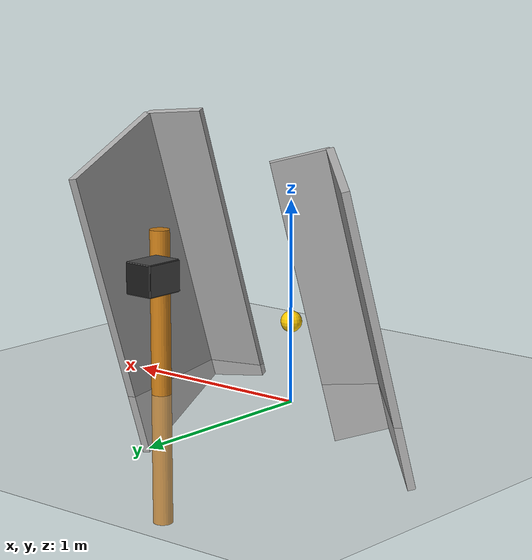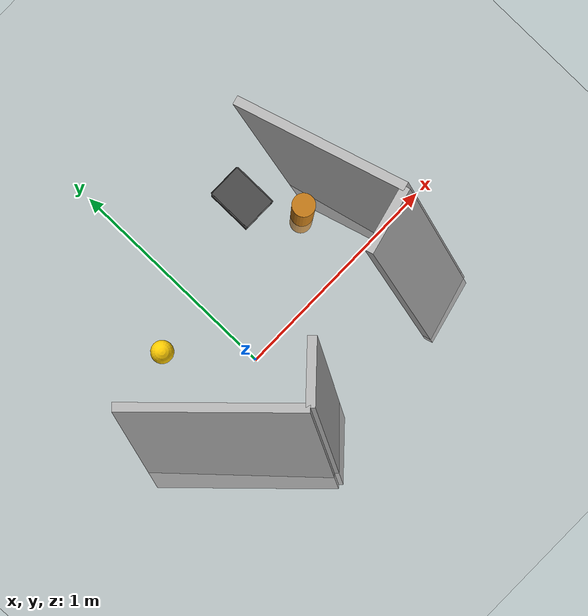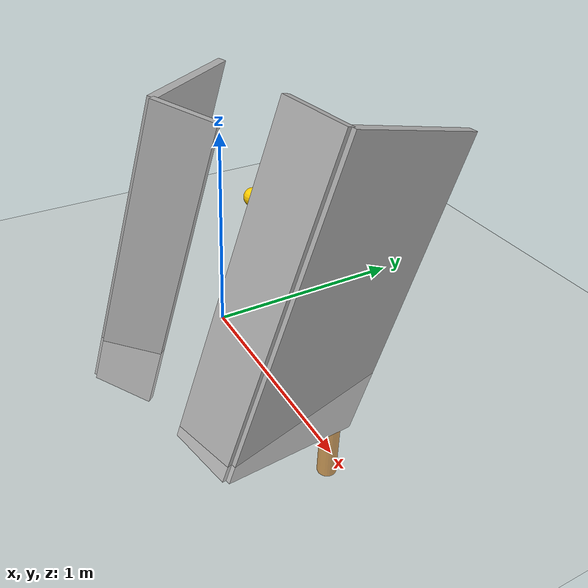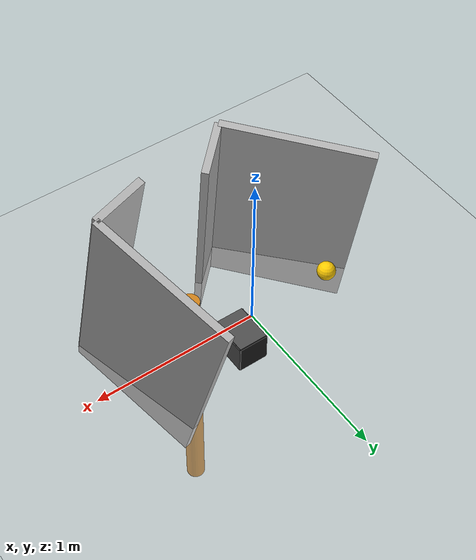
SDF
<?xml version="1.0" ?>
<sdf version="1.9">
  <world name="refuel_world">
    <physics name="4ms" type="ignored">
      <max_step_size>0.004</max_step_size>
      <real_time_factor>1.0</real_time_factor>
    </physics>

    <plugin filename="gz-sim-physics-system" name="gz::sim::systems::Physics"/>
    <plugin filename="gz-sim-user-commands-system" name="gz::sim::systems::UserCommands"/>
    <plugin filename="gz-sim-scene-broadcaster-system" name="gz::sim::systems::SceneBroadcaster"/>

    <light type="directional" name="sun">
      <cast_shadows>true</cast_shadows>
      <pose>0 0 10 0 0 0</pose>
      <diffuse>0.8 0.8 0.8 1</diffuse>
      <specular>0.2 0.2 0.2 1</specular>
      <direction>-0.5 0.1 -0.9</direction>
    </light>

    <model name="ground_plane">
      <static>true</static>
      <link name="link">
        <collision name="collision">
          <geometry><plane><normal>0 0 1</normal></plane></geometry>
        </collision>
        <visual name="visual">
          <geometry><plane><normal>0 0 1</normal><size>100 100</size></plane></geometry>
          <material><ambient>0.8 0.8 0.8 1</ambient><diffuse>0.8 0.8 0.8 1</diffuse></material>
        </visual>
      </link>
    </model>

    <!-- Refined Concave Socket (Industrial Grade) -->
    <model name="hollow_refuel_inlet">
      <static>true</static>
      <pose>0.43897855281829834 0.3999997079372406 0.64717501401901245 0 0 1.5708000357176291</pose>
      <link name="inlet_body">
        <visual name="back_visual">
          <pose>0.20000000000000001 0 0 0 0 0</pose>
          <geometry>
            <box>
              <size>0.01 0.14999999999999999 0.14999999999999999</size>
            </box>
          </geometry>
          <material>
            <ambient>0.100000001 0.100000001 0.100000001 1</ambient>
            <diffuse>0.100000001 0.100000001 0.100000001 1</diffuse>
          </material>
        </visual>
        <collision name="back_collision">
          <pose>0.20000000000000001 0 0 0 0 0</pose>
          <geometry>
            <box>
              <size>0.01 0.14999999999999999 0.14999999999999999</size>
            </box>
          </geometry>
          <surface>
            <friction>
              <ode/>
            </friction>
            <bounce/>
            <contact/>
          </surface>
        </collision>
        <visual name="top_wall">
          <pose>0.10000000000000001 0 0.074999999999999997 0 0 0</pose>
          <geometry>
            <box>
              <size>0.20000000000000001 0.14999999999999999 0.01</size>
            </box>
          </geometry>
          <material>
            <ambient>0.300000012 0.300000012 0.300000012 1</ambient>
            <diffuse>0.300000012 0.300000012 0.300000012 1</diffuse>
          </material>
        </visual>
        <collision name="top_wall_col">
          <pose>0.10000000000000001 0 0.074999999999999997 0 0 0</pose>
          <geometry>
            <box>
              <size>0.20000000000000001 0.14999999999999999 0.01</size>
            </box>
          </geometry>
          <surface>
            <friction>
              <ode/>
            </friction>
            <bounce/>
            <contact/>
          </surface>
        </collision>
        <visual name="bottom_wall">
          <pose>0.10000000000000001 0 -0.074999999999999997 0 0 0</pose>
          <geometry>
            <box>
              <size>0.20000000000000001 0.14999999999999999 0.01</size>
            </box>
          </geometry>
          <material>
            <ambient>0.300000012 0.300000012 0.300000012 1</ambient>
            <diffuse>0.300000012 0.300000012 0.300000012 1</diffuse>
          </material>
        </visual>
        <collision name="bottom_wall_col">
          <pose>0.10000000000000001 0 -0.074999999999999997 0 0 0</pose>
          <geometry>
            <box>
              <size>0.20000000000000001 0.14999999999999999 0.01</size>
            </box>
          </geometry>
          <surface>
            <friction>
              <ode/>
            </friction>
            <bounce/>
            <contact/>
          </surface>
        </collision>
        <visual name="left_wall">
          <pose>0.10000000000000001 0.074999999999999997 0 0 0 0</pose>
          <geometry>
            <box>
              <size>0.20000000000000001 0.01 0.14999999999999999</size>
            </box>
          </geometry>
          <material>
            <ambient>0.300000012 0.300000012 0.300000012 1</ambient>
            <diffuse>0.300000012 0.300000012 0.300000012 1</diffuse>
          </material>
        </visual>
        <collision name="left_wall_col">
          <pose>0.10000000000000001 0.074999999999999997 0 0 0 0</pose>
          <geometry>
            <box>
              <size>0.20000000000000001 0.01 0.14999999999999999</size>
            </box>
          </geometry>
          <surface>
            <friction>
              <ode/>
            </friction>
            <bounce/>
            <contact/>
          </surface>
        </collision>
        <visual name="right_wall">
          <pose>0.10000000000000001 -0.074999999999999997 0 0 0 0</pose>
          <geometry>
            <box>
              <size>0.20000000000000001 0.01 0.14999999999999999</size>
            </box>
          </geometry>
          <material>
            <ambient>0.300000012 0.300000012 0.300000012 1</ambient>
            <diffuse>0.300000012 0.300000012 0.300000012 1</diffuse>
          </material>
        </visual>
        <collision name="right_wall_col">
          <pose>0.10000000000000001 -0.074999999999999997 0 0 0 0</pose>
          <geometry>
            <box>
              <size>0.20000000000000001 0.01 0.14999999999999999</size>
            </box>
          </geometry>
          <surface>
            <friction>
              <ode/>
            </friction>
            <bounce/>
            <contact/>
          </surface>
        </collision>
        <pose>0 0 0 0 0 0</pose>
        <inertial>
          <pose>0 0 0 0 0 0</pose>
          <mass>1</mass>
          <inertia>
            <ixx>1</ixx>
            <ixy>0</ixy>
            <ixz>0</ixz>
            <iyy>1</iyy>
            <iyz>0</iyz>
            <izz>1</izz>
          </inertia>
        </inertial>
        <enable_wind>false</enable_wind>
      </link>
      <self_collide>false</self_collide>
    </model>

    <!-- L-Shaped Wall (Static) — partial enclosure around workspace -->
    <!-- Layout (top-down, Y-up, X-right):                          -->
    <!--   .        kuka (0,0)                                       -->
    <!--   .  . . . . .              x (inlet)                       -->
    <!--                  c (cylinder, moving)                        -->

    <!-- Tilted L-Shaped Wall (Static) — unified model with yaw      -->
    <model name="l_wall">
      <static>true</static>
      <pose>0.88537293672561646 -0.1840226948261261 0.63134819269180298 3.0408800087997232 -0.28413900133990611 -1.2926500652410564</pose>
      <link name="wall_links">
        <gravity>false</gravity>
        <visual name="v_vis">
          <pose>-0.40000000000000002 0 0 0 0 0</pose>
          <geometry>
            <box>
              <size>0.80000000000000004 0.040000000000000001 1.5</size>
            </box>
          </geometry>
          <material>
            <ambient>0.600000024 0.600000024 0.600000024 1</ambient>
            <diffuse>0.699999988 0.699999988 0.699999988 1</diffuse>
          </material>
        </visual>
        <collision name="v_col">
          <pose>-0.40000000000000002 0 0 0 0 0</pose>
          <geometry>
            <box>
              <size>0.80000000000000004 0.040000000000000001 1.5</size>
            </box>
          </geometry>
          <surface>
            <friction>
              <ode/>
            </friction>
            <bounce/>
            <contact/>
          </surface>
        </collision>
        <visual name="h_vis">
          <pose>0 0.14999999999999999 0 0 0 0</pose>
          <geometry>
            <box>
              <size>0.040000000000000001 0.29999999999999999 1.5</size>
            </box>
          </geometry>
          <material>
            <ambient>0.600000024 0.600000024 0.600000024 1</ambient>
            <diffuse>0.699999988 0.699999988 0.699999988 1</diffuse>
          </material>
        </visual>
        <collision name="h_col">
          <pose>0 0.14999999999999999 0 0 0 0</pose>
          <geometry>
            <box>
              <size>0.040000000000000001 0.29999999999999999 1.5</size>
            </box>
          </geometry>
          <surface>
            <friction>
              <ode/>
            </friction>
            <bounce/>
            <contact/>
          </surface>
        </collision>
        <pose>0 0 0 0 0 0</pose>
        <inertial>
          <pose>0 0 0 0 0 0</pose>
          <mass>1</mass>
          <inertia>
            <ixx>1</ixx>
            <ixy>0</ixy>
            <ixz>0</ixz>
            <iyy>1</iyy>
            <iyz>0</iyz>
            <izz>1</izz>
          </inertia>
        </inertial>
        <enable_wind>false</enable_wind>
      </link>
      <self_collide>false</self_collide>
    </model>

    <model name="l_wall_rear">
      <static>true</static>
      <pose>-0.0651078000664711 -0.4698689877986908 0.48663601279258728 -0.22969331719059286 -0.097120125560542087 -0.80745500892211752</pose>
      <link name="wall_links_rear">
        <gravity>false</gravity>
        <visual name="v_vis">
          <pose>-0.40000000000000002 0 0 0 0 0</pose>
          <geometry>
            <box>
              <size>0.80000000000000004 0.040000000000000001 1.5</size>
            </box>
          </geometry>
          <material>
            <ambient>0.600000024 0.600000024 0.600000024 1</ambient>
            <diffuse>0.699999988 0.699999988 0.699999988 1</diffuse>
          </material>
        </visual>
        <collision name="v_col">
          <pose>-0.40000000000000002 0 0 0 0 0</pose>
          <geometry>
            <box>
              <size>0.80000000000000004 0.040000000000000001 1.5</size>
            </box>
          </geometry>
          <surface>
            <friction>
              <ode/>
            </friction>
            <bounce/>
            <contact/>
          </surface>
        </collision>
        <visual name="h_vis">
          <pose>0 0.14999999999999999 0 0 0 0</pose>
          <geometry>
            <box>
              <size>0.040000000000000001 0.29999999999999999 1.5</size>
            </box>
          </geometry>
          <material>
            <ambient>0.600000024 0.600000024 0.600000024 1</ambient>
            <diffuse>0.699999988 0.699999988 0.699999988 1</diffuse>
          </material>
        </visual>
        <collision name="h_col">
          <pose>0 0.14999999999999999 0 0 0 0</pose>
          <geometry>
            <box>
              <size>0.040000000000000001 0.29999999999999999 1.5</size>
            </box>
          </geometry>
          <surface>
            <friction>
              <ode/>
            </friction>
            <bounce/>
            <contact/>
          </surface>
        </collision>
        <pose>0 0 0 0 0 0</pose>
        <inertial>
          <pose>0 0 0 0 0 0</pose>
          <mass>1</mass>
          <inertia>
            <ixx>1</ixx>
            <ixy>0</ixy>
            <ixz>0</ixz>
            <iyy>1</iyy>
            <iyz>0</iyz>
            <izz>1</izz>
          </inertia>
        </inertial>
        <enable_wind>false</enable_wind>
      </link>
      <self_collide>false</self_collide>
    </model>

    <!-- Moving Cylinder — increased height (1.50m) -->
    <model name="dynamic_pillar">
      <static>true</static>
      <pose>0.58980602025985718 0.29246100783348083 0.076867498457431793 0 0 0</pose>
      <link name="pillar_link">
        <gravity>false</gravity>
        <inertial>
          <mass>2</mass>
          <inertia>
            <ixx>0.050000000000000003</ixx>
            <iyy>0.050000000000000003</iyy>
            <izz>0.01</izz>
            <ixy>0</ixy>
            <ixz>0</ixz>
            <iyz>0</iyz>
          </inertia>
          <pose>0 0 0 0 0 0</pose>
        </inertial>
        <visual name="visual">
          <geometry>
            <cylinder>
              <radius>0.050000000000000003</radius>
              <length>1.5</length>
            </cylinder>
          </geometry>
          <material>
            <ambient>0.800000012 0.5 0.100000001 1</ambient>
            <diffuse>0.800000012 0.5 0.100000001 1</diffuse>
          </material>
        </visual>
        <collision name="collision">
          <geometry>
            <cylinder>
              <radius>0.050000000000000003</radius>
              <length>1.5</length>
            </cylinder>
          </geometry>
          <surface>
            <friction>
              <ode/>
            </friction>
            <bounce/>
            <contact/>
          </surface>
        </collision>
        <pose>0 0 0 0 0 0</pose>
        <enable_wind>false</enable_wind>
      </link>
      <plugin name="gz::sim::systems::VelocityControl" filename="gz-sim-velocity-control-system"/>
      <self_collide>false</self_collide>
    </model>

    <!-- Fuel Dispenser (Source Sphere) - Gold color -->
    <model name="fuel_dispenser">
      <static>true</static>
      <pose>-0.25 0.30 0.50 0 0 0</pose>
      <link name="dispenser_link">
        <visual name="visual">
          <geometry><sphere><radius>0.05</radius></sphere></geometry>
          <material><ambient>1.0 0.8 0.0 1</ambient><diffuse>1.0 0.8 0.0 1</diffuse></material>
        </visual>
      </link>
    </model>

  </world>
</sdf>
